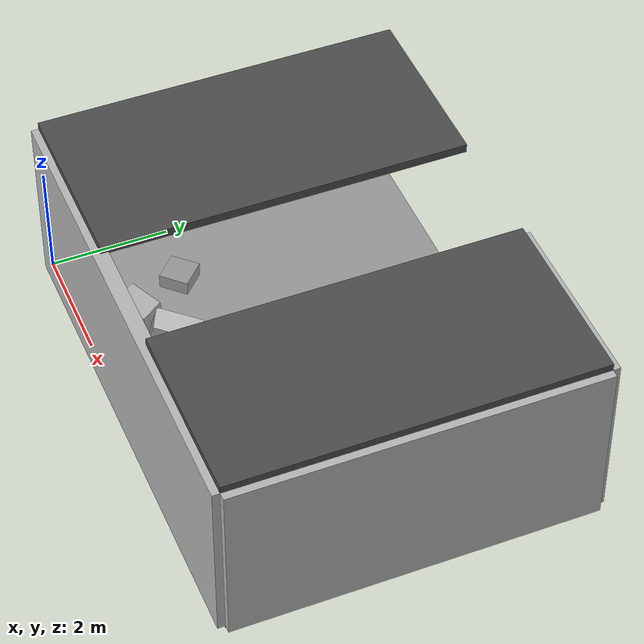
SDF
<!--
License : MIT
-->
<?xml version="1.0" ?>
<sdf version="1.7">
    <world name="damaged_shelter">

        <!-- ================================================================
             Physics Configuration
             ================================================================ -->
        <physics name="default_physics" type="ode">
            <real_time_update_rate>1000</real_time_update_rate>
            <max_step_size>0.001</max_step_size>
            <real_time_factor>1</real_time_factor>
            <ode>
                <solver>
                    <type>quick</type>
                    <iters>150</iters>
                    <precon_iters>0</precon_iters>
                    <sor>1.400000</sor>
                    <use_dynamic_moi_rescaling>1</use_dynamic_moi_rescaling>
                </solver>
                <constraints>
                    <cfm>0.0</cfm>
                    <erp>0.2</erp>
                    <contact_max_correcting_vel>2000.000000</contact_max_correcting_vel>
                    <contact_surface_layer>0.01</contact_surface_layer>
                </constraints>
            </ode>
        </physics>

        <!-- ================================================================
             Lighting
             ================================================================ -->
        <!-- Directional sun light (reduced intensity simulates overcast disaster sky) -->
        <light name="sun" type="directional">
            <cast_shadows>true</cast_shadows>
            <pose>0 0 10 0 0 0</pose>
            <diffuse>0.6 0.6 0.6 1</diffuse>
            <specular>0.2 0.2 0.2 1</specular>
            <attenuation>
                <range>1000</range>
                <constant>0.9</constant>
                <linear>0.01</linear>
                <quadratic>0.001</quadratic>
            </attenuation>
            <direction>-0.5 0.1 -0.9</direction>
        </light>

        <!-- Point light inside shelter (simulates emergency lantern) -->
        <light name="interior_lantern" type="point">
            <pose>4 3 1.5 0 0 0</pose>
            <diffuse>0.8 0.7 0.5 1</diffuse>
            <specular>0.1 0.1 0.1 1</specular>
            <attenuation>
                <range>8</range>
                <constant>0.5</constant>
                <linear>0.1</linear>
                <quadratic>0.05</quadratic>
            </attenuation>
            <cast_shadows>false</cast_shadows>
        </light>

        <!-- ================================================================
             Ground Plane / Floor Slab
             ================================================================ -->
        <model name="floor_slab">
            <static>true</static>
            <pose>4 3 0 0 0 0</pose>
            <link name="floor_link">
                <collision name="floor_collision">
                    <geometry>
                        <box><size>8.0 6.0 0.10</size></box>
                    </geometry>
                    <surface>
                        <friction>
                            <ode>
                                <mu>0.9</mu>    <!-- Concrete floor friction -->
                                <mu2>0.9</mu2>
                            </ode>
                        </friction>
                    </surface>
                </collision>
                <visual name="floor_visual">
                    <geometry>
                        <box><size>8.0 6.0 0.10</size></box>
                    </geometry>
                    <material>
                        <script>
                            <uri>file://media/materials/scripts/gazebo.material</uri>
                            <name>Gazebo/Grey</name>
                        </script>
                    </material>
                </visual>
            </link>
        </model>

        <model name="south_wall">
            <static>true</static>
            <pose>4.0 0 1.5 0 0 0</pose>
            <link name="link">
                <collision name="col">
                    <geometry><box><size>8.0 0.25 3.0</size></box></geometry>
                </collision>
                <visual name="vis">
                    <geometry><box><size>8.0 0.25 3.0</size></box></geometry>
                    <material>
                        <script>
                            <uri>file://media/materials/scripts/gazebo.material</uri>
                            <name>Gazebo/Concrete</name>
                        </script>
                    </material>
                </visual>
            </link>
        </model>

        <!-- ================================================================
             East Wall — INTACT
             ================================================================ -->
        <model name="east_wall">
            <static>true</static>
            <pose>8.0 3.0 1.5 0 0 0</pose>
            <link name="link">
                <collision name="col">
                    <geometry><box><size>0.25 6.0 3.0</size></box></geometry>
                </collision>
                <visual name="vis">
                    <geometry><box><size>0.25 6.0 3.0</size></box></geometry>
                    <material>
                        <script>
                            <uri>file://media/materials/scripts/gazebo.material</uri>
                            <name>Gazebo/Concrete</name>
                        </script>
                    </material>
                </visual>
            </link>
        </model>

        <model name="north_wall_remaining">
            <static>true</static>
            <!-- Only the right 3 m portion remains -->
            <pose>6.5 6.0 1.5 0 0 0</pose>
            <link name="link">
                <collision name="col">
                    <geometry><box><size>3.0 0.25 3.0</size></box></geometry>
                </collision>
                <visual name="vis">
                    <geometry><box><size>3.0 0.25 3.0</size></box></geometry>
                    <material>
                        <script>
                            <uri>file://media/materials/scripts/gazebo.material</uri>
                            <name>Gazebo/Concrete</name>
                        </script>
                    </material>
                </visual>
            </link>
        </model>

        <model name="west_wall_leaning">
            <static>true</static>
            <!-- Slight outward tilt: 0.087 rad = 5 degrees -->
            <pose>0.0 3.0 1.5 0 0.087 0</pose>
            <link name="link">
                <collision name="col">
                    <geometry><box><size>0.25 6.0 3.0</size></box></geometry>
                </collision>
                <visual name="vis">
                    <geometry><box><size>0.25 6.0 3.0</size></box></geometry>
                    <material>
                        <script>
                            <uri>file://media/materials/scripts/gazebo.material</uri>
                            <name>Gazebo/Bricks</name>
                        </script>
                    </material>
                </visual>
            </link>
        </model>

        <!-- ================================================================
             Roof — PARTIAL (hole in central section)
             ================================================================ -->
        <!-- Roof east panel (intact) -->
        <model name="roof_east">
            <static>true</static>
            <pose>6.5 3.0 3.05 0 0 0</pose>
            <link name="link">
                <collision name="col">
                    <geometry><box><size>3.0 6.0 0.15</size></box></geometry>
                </collision>
                <visual name="vis">
                    <geometry><box><size>3.0 6.0 0.15</size></box></geometry>
                    <material>
                        <script>
                            <uri>file://media/materials/scripts/gazebo.material</uri>
                            <name>Gazebo/DarkGrey</name>
                        </script>
                    </material>
                </visual>
            </link>
        </model>

        <!-- Roof west panel (intact) -->
        <model name="roof_west">
            <static>true</static>
            <pose>1.5 3.0 3.05 0 0 0</pose>
            <link name="link">
                <collision name="col">
                    <geometry><box><size>3.0 6.0 0.15</size></box></geometry>
                </collision>
                <visual name="vis">
                    <geometry><box><size>3.0 6.0 0.15</size></box></geometry>
                    <material>
                        <script>
                            <uri>file://media/materials/scripts/gazebo.material</uri>
                            <name>Gazebo/DarkGrey</name>
                        </script>
                    </material>
                </visual>
            </link>
        </model>
        <!-- NOTE: Central roof section (x=3–5) is intentionally missing = HOLE -->

        <!-- ================================================================
             Debris — Collapsed Wall Rubble (NW corner)
             ================================================================ -->
        <model name="debris_block_1">
            <static>true</static>
            <pose>1.8 0.9 0.3 0.2 0.1 0.5</pose>
            <link name="link">
                <collision name="col">
                    <geometry><box><size>0.6 0.4 0.5</size></box></geometry>
                </collision>
                <visual name="vis">
                    <geometry><box><size>0.6 0.4 0.5</size></box></geometry>
                    <material>
                        <script>
                            <uri>file://media/materials/scripts/gazebo.material</uri>
                            <name>Gazebo/Rocky</name>
                        </script>
                    </material>
                </visual>
            </link>
        </model>

        <model name="debris_block_2">
            <static>true</static>
            <pose>2.4 1.3 0.2 -0.1 0.3 1.1</pose>
            <link name="link">
                <collision name="col">
                    <geometry><box><size>0.8 0.5 0.35</size></box></geometry>
                </collision>
                <visual name="vis">
                    <geometry><box><size>0.8 0.5 0.35</size></box></geometry>
                    <material>
                        <script>
                            <uri>file://media/materials/scripts/gazebo.material</uri>
                            <name>Gazebo/Concrete</name>
                        </script>
                    </material>
                </visual>
            </link>
        </model>

        <model name="debris_block_3">
            <static>true</static>
            <pose>1.2 1.8 0.15 0.0 0.0 0.8</pose>
            <link name="link">
                <collision name="col">
                    <geometry><box><size>0.5 0.5 0.3</size></box></geometry>
                </collision>
                <visual name="vis">
                    <geometry><box><size>0.5 0.5 0.3</size></box></geometry>
                    <material>
                        <script>
                            <uri>file://media/materials/scripts/gazebo.material</uri>
                            <name>Gazebo/Grey</name>
                        </script>
                    </material>
                </visual>
            </link>
        </model>

        <!-- Debris from roof hole collapse (central area) -->
        <model name="debris_roof_fragment_1">
            <static>true</static>
            <pose>4.8 2.9 0.2 0.15 -0.2 0.3</pose>
            <link name="link">
                <collision name="col">
                    <geometry><box><size>0.9 0.7 0.25</size></box></geometry>
                </collision>
                <visual name="vis">
                    <geometry><box><size>0.9 0.7 0.25</size></box></geometry>
                    <material>
                        <script>
                            <uri>file://media/materials/scripts/gazebo.material</uri>
                            <name>Gazebo/DarkGrey</name>
                        </script>
                    </material>
                </visual>
            </link>
        </model>

        <model name="debris_roof_fragment_2">
            <static>true</static>
            <pose>5.3 3.4 0.1 -0.1 0.1 -0.5</pose>
            <link name="link">
                <collision name="col">
                    <geometry><box><size>0.6 0.6 0.2</size></box></geometry>
                </collision>
                <visual name="vis">
                    <geometry><box><size>0.6 0.6 0.2</size></box></geometry>
                    <material>
                        <script>
                            <uri>file://media/materials/scripts/gazebo.material</uri>
                            <name>Gazebo/DarkGrey</name>
                        </script>
                    </material>
                </visual>
            </link>
        </model>

        <model name="robot_spawn_marker">
            <static>true</static>
            <pose>1.0 1.0 0.0 0 0 0</pose>
            <link name="link">
                <visual name="vis">
                    <geometry>
                        <cylinder><radius>0.05</radius><length>0.01</length></cylinder>
                    </geometry>
                    <material>
                        <script>
                            <uri>file://media/materials/scripts/gazebo.material</uri>
                            <name>Gazebo/Green</name>
                        </script>
                    </material>
                </visual>
            </link>
        </model>

        <!-- ================================================================
             Scene Settings
             ================================================================ -->
        <scene>
            <ambient>0.3 0.3 0.4 1</ambient>    <!-- Slightly dark/overcast -->
            <background>0.5 0.6 0.7 1</background>
            <shadows>true</shadows>
            <fog>
                <color>0.7 0.7 0.7 1</color>
                <type>linear</type>
                <start>8.0</start>
                <end>20.0</end>
                <density>0.05</density>
            </fog>
        </scene>

    </world>
</sdf>
